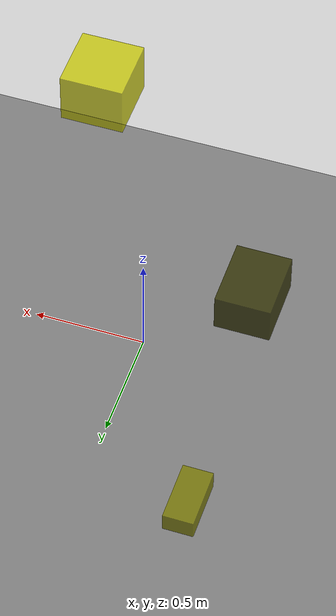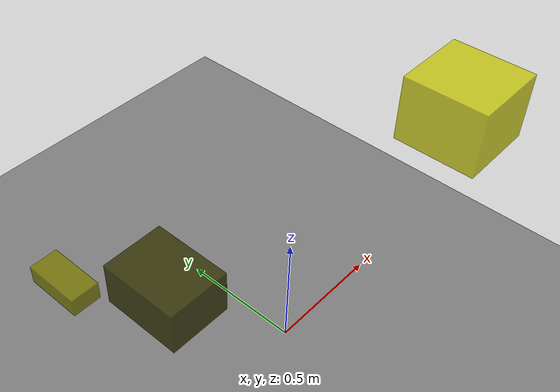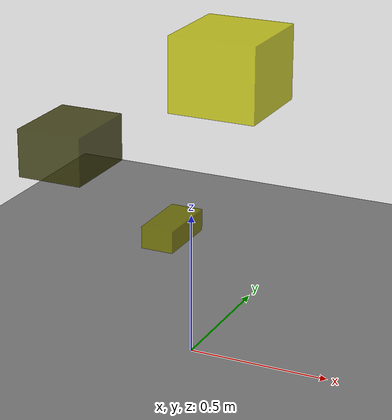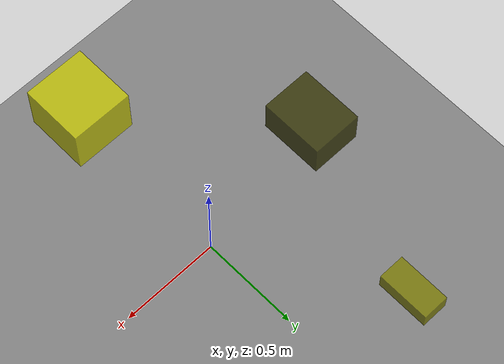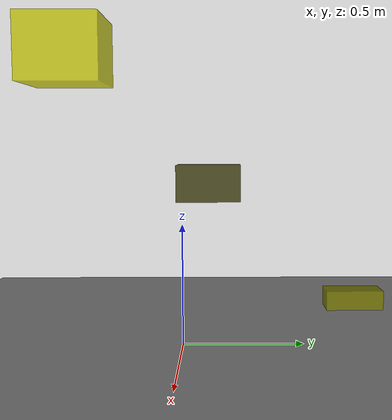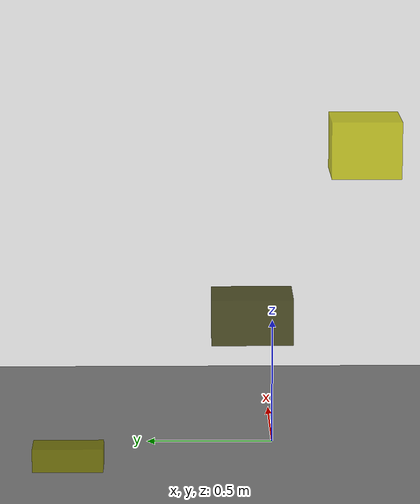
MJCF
<?xml version="1.0"?>
<mujoco model="obstacle_scene">
  <compiler angle="radian" coordinate="local"/>
  <option timestep="0.001" gravity="0 0 -9.81"/>

  <asset>
    <material name="obstacle_mat" rgba="0.8 0.8 0.0 0.8"/>
    <material name="ground_mat" rgba="0.5 0.5 0.5 1"/>
  </asset>

  <worldbody>
    <!-- Ground plane -->
    <geom name="ground" type="plane" size="3 3 0.1" material="ground_mat"/>

    <!-- Obstacles -->
    <body name="obstacle_0" pos="-0.512436 0.094835 0.643232">
      <geom name="obs_0" type="box" size="0.120009 0.153578 0.086861" rgba="0.2 0.2 0.0 0.8"/>
    </body>
    <body name="obstacle_1" pos="-0.466451 0.799595 0.078311">
      <geom name="obs_1" type="box" size="0.067407 0.135907 0.045188" rgba="0.5 0.5 0.0 0.8"/>
    </body>
    <body name="obstacle_2" pos="0.308830 -0.383719 1.151804">
      <geom name="obs_2" type="box" size="0.135842 0.140828 0.115189" rgba="0.8 0.8 0.0 0.8"/>
    </body>
  </worldbody>
</mujoco>
